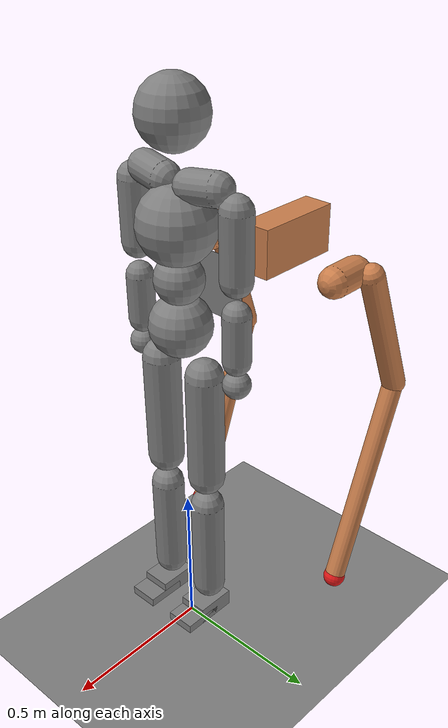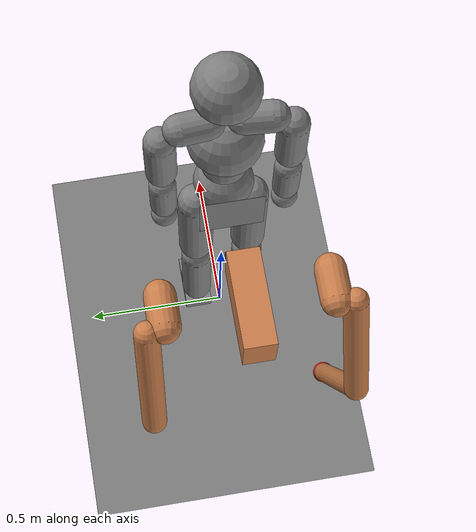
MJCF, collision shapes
<mujoco model="srl_real_hri_HXYK_175">

  <statistic extent="2" center="0.000000 0.000000 1.066667" />

  <option timestep="0.00555" />
  <compiler angle="degree" meshdir="../srl_real_hri/meshes_v1/" />
  <default>
    <motor ctrlrange="-1 1" ctrllimited="true" />
    <default class="body">
      <geom type="capsule" condim="1" friction="1.0 0.05 0.05" solimp=".9 .99 .003" solref=".015 1" />
      <joint type="hinge" damping="0.1" stiffness="5" armature=".007" limited="true" solimplimit="0 .99 .01" />
      <site size="0.042667" group="3" />
      <default class="force-torque">
        <site type="box" size="0.010667 0.010667 0.021333" rgba="1 0 0 1" />
      </default>
      <default class="touch">
        <site type="capsule" rgba="0 0 1 .3" />
      </default>
      <default class="visual">
        <geom type="mesh" contype="0" conaffinity="0" group="2" material="blue_mat"/>
      </default>
      <default class="collision">
        <geom contype="1" conaffinity="1" group="3" material="collision_mat"/>
      </default>
      <default class="smpl">
        <geom type="mesh" contype="0" conaffinity="0" group="4" material="blue_mat"/>
      </default>
    </default>
  </default>

  <asset>
    <mesh name="base_link" file="base_link.STL"/>
    <mesh name="left_hip_x_link" file="left_hip_x_link.STL"/>
    <mesh name="left_hip_y_link" file="left_hip_y_link.STL"/>
    <mesh name="left_knee_link" file="left_knee_link.STL"/>
    <mesh name="right_hip_x_link" file="right_hip_x_link.STL"/>
    <mesh name="right_hip_y_link" file="right_hip_y_link.STL"/>
    <mesh name="right_knee_link" file="right_knee_link.STL"/>

    <material name="blue_mat" rgba="0.86 0.91 1 1"/>
    <material name="white_mat" rgba="1 1 1 1"/>
    <material name="collision_mat" rgba="0.8 0.5 0.3 0.5"/>

    <mesh file="humanoid_meshes/geom/Pelvis.stl" name="Pelvis_mesh"/>
    <mesh file="humanoid_meshes/geom/L_Hip.stl" name="L_Hip_mesh"/>
    <mesh file="humanoid_meshes/geom/R_Hip.stl" name="R_Hip_mesh"/>
    <mesh file="humanoid_meshes/geom/Torso.stl" name="Torso_mesh"/>
    <mesh file="humanoid_meshes/geom/L_Knee.stl" name="L_Knee_mesh"/>
    <mesh file="humanoid_meshes/geom/R_Knee.stl" name="R_Knee_mesh"/>
    <mesh file="humanoid_meshes/geom/Spine.stl" name="Spine_mesh"/>
    <mesh file="humanoid_meshes/geom/L_Ankle.stl" name="L_Ankle_mesh"/>
    <mesh file="humanoid_meshes/geom/R_Ankle.stl" name="R_Ankle_mesh"/>
    <mesh file="humanoid_meshes/geom/Chest.stl" name="Chest_mesh"/>
    <mesh file="humanoid_meshes/geom/L_Toe.stl" name="L_Toe_mesh"/>
    <mesh file="humanoid_meshes/geom/R_Toe.stl" name="R_Toe_mesh"/>
    <mesh file="humanoid_meshes/geom/Neck.stl" name="Neck_mesh"/>
    <mesh file="humanoid_meshes/geom/L_Thorax.stl" name="L_Thorax_mesh"/>
    <mesh file="humanoid_meshes/geom/R_Thorax.stl" name="R_Thorax_mesh"/>
    <mesh file="humanoid_meshes/geom/Head.stl" name="Head_mesh"/>
    <mesh file="humanoid_meshes/geom/L_Shoulder.stl" name="L_Shoulder_mesh"/>
    <mesh file="humanoid_meshes/geom/R_Shoulder.stl" name="R_Shoulder_mesh"/>
    <mesh file="humanoid_meshes/geom/L_Elbow.stl" name="L_Elbow_mesh"/>
    <mesh file="humanoid_meshes/geom/R_Elbow.stl" name="R_Elbow_mesh"/>
    <mesh file="humanoid_meshes/geom/L_Wrist.stl" name="L_Wrist_mesh"/>
    <mesh file="humanoid_meshes/geom/R_Wrist.stl" name="R_Wrist_mesh"/>
    <mesh file="humanoid_meshes/geom/L_Hand.stl" name="L_Hand_mesh"/>
    <mesh file="humanoid_meshes/geom/R_Hand.stl" name="R_Hand_mesh"/>
    <mesh file="humanoid_meshes/geom/L_Foot.stl" name="L_Foot_mesh"/>
    <mesh file="humanoid_meshes/geom/R_Foot.stl" name="R_Foot_mesh"/>
  </asset>

  <worldbody>
    <geom name="floor" type="plane" conaffinity="1" size="106.666667 106.666667 0.213333" />
    <body name="pelvis" pos="0.000000 0.000000 1.066667" childclass="body">
      <freejoint name="root" />

      <site name="root" class="force-torque" />
      <geom name="pelvis" type="sphere" pos="0.000000 0.000000 0.074667" size="0.096000" density="2226" />
      <geom type="mesh" mesh="Pelvis_mesh" class="smpl"/>
      <geom name="upper_waist" type="sphere" pos="0.000000 0.000000 0.218667" size="0.074667" density="2226" />
      <geom type="mesh" mesh="Torso_mesh" class="smpl" pos="-0.0261 -0.0027 0.1112"/>
      <geom type="mesh" mesh="Spine_mesh" class="smpl" pos="-0.026 0.0027 0.2488"/>
      <site name="pelvis" class="touch" type="sphere" pos="0.000000 0.000000 0.074667" size="0.097067" />
      <site name="upper_waist" class="touch" type="sphere" pos="0.000000 0.000000 0.218667" size="0.075733" />

      <body name="torso" pos="0.000000 0.000000 0.251894">
        <light name="top" pos="0.000000 0.000000 2.133333" mode="trackcom" />
        <camera name="back" pos="-3.200000 0.000000 1.066667" xyaxes="0 -1 0 1 0 2" mode="trackcom" />
        <camera name="side" pos="0.000000 -3.200000 1.066667" xyaxes="1 0 0 0 1 2" mode="trackcom" />
        <joint name="abdomen_x" pos="0.000000 0.000000 0.000000" axis="1 0 0" range="-60 60" stiffness="600" damping="60" armature=".025" />
        <joint name="abdomen_y" pos="0.000000 0.000000 0.000000" axis="0 1 0" range="-60 90" stiffness="600" damping="60" armature=".025" />
        <joint name="abdomen_z" pos="0.000000 0.000000 0.000000" axis="0 0 1" range="-50 50" stiffness="600" damping="60" armature=".025" />
        <geom name="torso" type="sphere" pos="0.000000 0.000000 0.128000" size="0.117333" density="1794" />
        <geom type="mesh" mesh="Chest_mesh" class="smpl" pos="-0.0005 0.0042 0.050806"/>
        <geom type="mesh" mesh="Neck_mesh" class="smpl" pos="-0.0435 0.0006 0.276106"/>
        <site name="torso" class="touch" type="sphere" pos="0.000000 0.000000 0.128000" size="0.118400" />

        <geom name="right_clavicle" fromto="-0.006413 -0.048829 0.244049 -0.017957 -0.136722 0.253459" size="0.048000" density="1100" />
        <geom name="left_clavicle" fromto="-0.006413 0.048829 0.244049 -0.017957 0.136722 0.253459" size="0.048000" density="1100" />
        <geom type="mesh" mesh="R_Thorax_mesh" class="smpl" pos="-0.0419 -0.0773 0.174006"/>
        <geom type="mesh" mesh="L_Thorax_mesh" class="smpl" pos="-0.0374 0.083 0.176806"/>

        <body name="head" pos="0.000000 0.000000 0.238820">
          <joint name="neck_x" axis="1 0 0" range="-50 50" stiffness="50" damping="5" armature=".017" />
          <joint name="neck_y" axis="0 1 0" range="-40 60" stiffness="50" damping="5" armature=".017" />
          <joint name="neck_z" axis="0 0 1" range="-45 45" stiffness="50" damping="5" armature=".017" />
          <geom type="mesh" mesh="Head_mesh" class="smpl" pos="0.0121 0.0059 0.107886"/>
          <geom name="head" type="sphere" pos="0.000000 0.000000 0.186667" size="0.101333" density="1081" />
          <site name="head" class="touch" pos="0.000000 0.000000 0.186667" type="sphere" size="0.109867" />
          <camera name="egocentric" pos="0.109867 0.000000 0.186667" xyaxes="0 -1 0 .1 0 1" fovy="80" />
        </body>

        <body name="right_upper_arm" pos="-0.025653 -0.195317 0.259733">
          <joint name="right_shoulder_x" axis="1 0 0" range="-180 45" stiffness="200" damping="20" armature=".02" />
          <joint name="right_shoulder_y" axis="0 1 0" range="-180 60" stiffness="200" damping="20" armature=".02" />
          <joint name="right_shoulder_z" axis="0 0 1" range="-90 90" stiffness="200" damping="20" armature=".02" />
          <geom name="right_upper_arm" fromto="0.000000 0.000000 -0.053333 0.000000 0.000000 -0.245333" size="0.048000" density="982" />
          <geom type="mesh" mesh="R_Shoulder_mesh" class="smpl" quat="0.7071 0.7071 0 0" pos="-0.02 0.03 -0.05"/>
          <site name="right_upper_arm" class="touch" pos="0.000000 0.000000 -0.149333" size="0.049067 0.106667" zaxis="0 0 1" />

          <body name="right_lower_arm" pos="0.000000 0.000000 -0.293107">
            <joint name="right_elbow" axis="0 1 0" range="-160 0" stiffness="150" damping="15" armature=".015" />
            <geom name="right_lower_arm" fromto="0.000000 0.000000 -0.056000 0.000000 0.000000 -0.200000" size="0.042667" density="1056" />
            <geom type="mesh" mesh="R_Elbow_mesh" class="smpl" quat="0.7071 0.7071 0 0" pos="-0.04 0.048 -0.015"/>
            <site name="right_lower_arm" class="touch" pos="0.000000 0.000000 -0.128000" size="0.043733 0.073067" zaxis="0 1 0" />

            <body name="right_hand" pos="0.000000 0.000000 -0.276210">
              <geom name="right_hand" type="sphere" size="0.042667" density="1865" />
              <geom type="mesh" mesh="R_Wrist_mesh" class="smpl" quat="0.7071 0.7071 0 0" pos="-0.045 0.035 0"/>
              <geom type="mesh" mesh="R_Hand_mesh" class="smpl" quat="0.7071 0.7071 0 0" pos="-0.046 0.05 -0.1"/>
              <site name="right_hand" class="touch" type="sphere" size="0.043733" />
            </body>
          </body>
        </body>

        <body name="left_upper_arm" pos="-0.025653 0.195317 0.259733">
          <joint name="left_shoulder_x" axis="1 0 0" range="-45 180" stiffness="200" damping="20" armature=".02" />
          <joint name="left_shoulder_y" axis="0 1 0" range="-180 60" stiffness="200" damping="20" armature=".02" />
          <joint name="left_shoulder_z" axis="0 0 1" range="-90 90" stiffness="200" damping="20" armature=".02" />
          <geom name="left_upper_arm" fromto="0.000000 0.000000 -0.053333 0.000000 0.000000 -0.245333" size="0.048000" density="982" />
          <geom type="mesh" mesh="L_Shoulder_mesh" class="smpl" quat="0.7071 -0.7071 0 0" pos="-0.02 -0.03 -0.05"/>
          <site name="left_upper_arm" class="touch" pos="0.000000 0.000000 -0.149333" size="0.049067 0.106667" zaxis="0 0 1" />

          <body name="left_lower_arm" pos="0.000000 0.000000 -0.293107">
            <joint name="left_elbow" axis="0 1 0" range="-160 0" stiffness="150" damping="15" armature=".015" />
            <geom name="left_lower_arm" fromto="0.000000 0.000000 -0.056000 0.000000 0.000000 -0.200000" size="0.042667" density="1056" />
            <geom type="mesh" mesh="L_Elbow_mesh" class="smpl" quat="0.7071 -0.7071 0 0" pos="-0.045 -0.048 -0.023"/>
            <site name="left_lower_arm" class="touch" pos="0.000000 0.000000 -0.106667" size="0.043733 0.073067" zaxis="0 0 1" />

            <body name="left_hand" pos="0.000000 0.000000 -0.276210">
              <geom name="left_hand" type="sphere" size="0.042667" density="1865" />
              <geom type="mesh" mesh="L_Wrist_mesh" class="smpl" quat="0.7071 -0.7071 0 0" pos="-0.045 -0.035 0"/>
              <geom type="mesh" mesh="L_Hand_mesh" class="smpl" quat="0.7071 -0.7071 0 0" pos="-0.046 -0.05 -0.1"/>
              <site name="left_hand" class="touch" type="sphere" size="0.043733" />
            </body>
          </body>
        </body>
      </body>

      <body name="right_thigh" pos="0.000000 -0.090546 0.000000">
        <site name="right_hip" class="force-torque" />
        <joint name="right_hip_x" axis="1 0 0" range="-60 15" stiffness="300" damping="30" armature=".02" />
        <joint name="right_hip_y" axis="0 1 0" range="-140 60" stiffness="300" damping="30" armature=".02" />
        <joint name="right_hip_z" axis="0 0 1" range="-60 35" stiffness="300" damping="30" armature=".02" />
        <geom name="right_thigh" fromto="0.000000 0.000000 -0.064000 0.000000 0.000000 -0.424000" size="0.058667" density="1269" />
        <geom type="mesh" mesh="R_Hip_mesh" class="smpl" pos="-0.0046 0.022346 -0.0931" />
        <site name="right_thigh" class="touch" pos="0.000000 0.000000 -0.224000" size="0.059733 0.321067" zaxis="0 0 -1" />

        <body name="right_shin" pos="0.000000 0.000000 -0.489649">
          <site name="right_knee" class="force-torque" pos="0.000000 0.000000 0.000000" />
          <joint name="right_knee" pos="0.000000 0.000000 0.000000" axis="0 1 0" range="0 160" stiffness="300" damping="30" armature=".02" />
          <geom name="right_shin" fromto="0.000000 0.000000 -0.048000 0.000000 0.000000 -0.378667" size="0.053333" density="1014" />
          <geom type="mesh" mesh="R_Knee_mesh" class="smpl" pos="0 -0.015 -0.01"/>
          <site name="right_shin" class="touch" pos="0.000000 0.000000 -0.213333" size="0.054400 0.166400" zaxis="0 0 -1" />

          <body name="right_foot" pos="0.000000 0.000000 -0.437195">
            <site name="right_ankle" class="force-torque" />
            <joint name="right_ankle_x" pos="0.000000 0.000000 0.000000" axis="1 0 0" range="-30 30" stiffness="200" damping="20" armature=".01" />
            <joint name="right_ankle_y" pos="0.000000 0.000000 0.000000" axis="0 1 0" range="-55 55" stiffness="200" damping="20" armature=".01" />
            <joint name="right_ankle_z" pos="0.000000 0.000000 0.000000" axis="0 0 1" range="-40 40" stiffness="200" damping="20" armature=".01" />
            <geom name="right_foot" type="box" pos="0.018000 0.000000 -0.024000" size="0.064400 0.048000 0.029333" density="1141"/>
            <geom name="right_toe" type="box" pos="0.078000 0.000000 -0.0384" size="0.064400 0.048000 0.015" density="1141" />
            <geom type="mesh" mesh="R_Foot_mesh" class="smpl" pos="0 0 0"/>
            <site name="right_foot" class="touch" type="box" pos="0.048000 0.000000 -0.024000" size="0.095467 0.058667 0.030400" />
          </body>
        </body>
      </body>

      <body name="left_thigh" pos="0.000000 0.090546 0.000000">
        <site name="left_hip" class="force-torque" />
        <joint name="left_hip_x" axis="1 0 0" range="-15 60" stiffness="300" damping="30" armature=".02" />
        <joint name="left_hip_y" axis="0 1 0" range="-140 60" stiffness="300" damping="30" armature=".02" />
        <joint name="left_hip_z" axis="0 0 1" range="-35 60" stiffness="300" damping="30" armature=".02" />
        <geom name="left_thigh" fromto="0.000000 0.000000 -0.064000 0.000000 0.000000 -0.424000" size="0.058667" density="1269" />
        <geom type="mesh" mesh="L_Hip_mesh" class="smpl" pos="-0.0076 -0.020246 -0.0939"/>
        <site name="left_thigh" class="touch" pos="0.000000 0.000000 -0.224000" size="0.059733 0.321067" zaxis="0 0 -1" />

        <body name="left_shin" pos="0.000000 0.000000 -0.489649">
          <site name="left_knee" class="force-torque" pos="0.000000 0.000000 0.021333" />
          <joint name="left_knee" pos="0.000000 0.000000 0.000000" axis="0 1 0" range="0 160" stiffness="300" damping="30" armature=".02" />
          <geom name="left_shin" fromto="0.000000 0.000000 -0.048000 0.000000 0.000000 -0.378667" size="0.053333" density="1014" />
          <geom type="mesh" mesh="L_Knee_mesh" class="smpl" pos="0 0.015 -0.005"/>
          <site name="left_shin" class="touch" pos="0.000000 0.000000 -0.213333" size="0.054400 0.166400" zaxis="0 0 -1" />

          <body name="left_foot" pos="0.000000 0.000000 -0.437195">
            <site name="left_ankle" class="force-torque" />
            <joint name="left_ankle_x" pos="0.000000 0.000000 0.000000" axis="1 0 0" range="-30 30" stiffness="200" damping="20" armature=".01" />
            <joint name="left_ankle_y" pos="0.000000 0.000000 0.000000" axis="0 1 0" range="-55 55" stiffness="200" damping="20" armature=".01" />
            <joint name="left_ankle_z" pos="0.000000 0.000000 0.000000" axis="0 0 1" range="-40 40" stiffness="200" damping="20" armature=".01" />
            <geom name="left_foot" type="box" pos="0.018000 0.000000 -0.024000" size="0.064400 0.048000 0.029333" density="1141" />
            <geom name="left_toe" type="box" pos="0.078000 0.000000 -0.0384" size="0.064400 0.048000 0.015" density="1141"/>
            <geom type="mesh" mesh="L_Foot_mesh" class="smpl" pos="0 0 0"/>
            <site name="left_foot" class="touch" type="box" pos="0.048000 0.000000 -0.024000" size="0.095467 0.058667 0.030400" />
          </body>
        </body>
      </body>

<!-- SRL Robot Definition for srl_real_hri_v1 -->

<body name="SRL" pos="-0.15 0 0.15">
    <joint armature="0.00" axis="1 0 0" damping="3500" stiffness="150000" type="slide" name="SRL_virtual_damping_x" pos="0 0 0" range="-0.020 0.020" />
    <joint armature="0.00" axis="0 1 0" damping="3500" stiffness="150000" type="slide" name="SRL_virtual_damping_y" pos="0 0 0" range="-0.020 0.020" />
    <joint armature="0.00" axis="0 0 1" damping="3500" stiffness="150000" type="slide" name="SRL_virtual_damping_z" pos="0 0 0" range="-0.020 0.020" />

    <geom name="board" pos="0 0 0" size="0.0005 0.1 0.1" type="box" density="100"/>

    <!-- ############ SRL Structure ############ -->
    <body name="SRL_root" pos="-0.31537291178708343 0 -0.05" euler="0 0 0">

        <joint armature="0.00" axis="0 0 1" damping="0" name="SRL_freejoint_z" pos="0.31537291178708343 0 0" range="-20 20" stiffness="0"/>

        <joint armature="0.00" axis="0 1 0" damping="0" name="SRL_freejoint_y" pos="0.31537291178708343 0 0" range="-20 20" stiffness="0"/>

        <!-- SRL_freejoint_x disabled -->

        <inertial pos="-0.063056 0 0.059865" mass="10.276" fullinertia="0.12836 0.15292 0.23481 0 -0.003528 0"/>

        <geom mesh="base_link" class="visual"/>
        <geom type="box" size="0.15 0.05 0.08" pos="0 0 0.1" class="collision"/>

        <!-- ================= LEFT LEG CHAIN ================= -->
        <body name="left_hip_x_link" pos="0.039 0.2578105843367318 0.06" euler="0 0 0">
            <inertial pos="0.020751 0.0093109 0" mass="1.999" fullinertia="0.002205 0.003362 0.003412 0.000501 0 0"/>
            <joint name="left_hip_x_joint" axis="1 0 0" range="-45.0 45.0" damping="20" stiffness="120" armature="0.1"/>

            <geom mesh="left_hip_x_link" material="white_mat" class="visual"/>
            <geom type="capsule" size="0.05" fromto="-0.05 0 0 0.05 0 0" class="collision"/>

            <body name="left_hip_y_link" pos="-0.06 0.056 0" euler="0 20 0">
                <inertial pos="0.0044865 0.029882 -0.11897" mass="5.4706" fullinertia="0.13911 0.11979 0.024508 -0.000374 -0.000469 -0.004176"/>
                <joint name="left_hip_y_joint" axis="0 -1 0" range="-60.16 60.16" damping="25" stiffness="210" armature="0.1"/>

                <geom mesh="left_hip_y_link" material="white_mat" class="visual"/>
                <geom type="capsule" size="0.04" fromto="0 0 0 0 0.0155 -0.45986203895430183" class="collision"/>

                <body name="left_knee_link" pos="0 0.0155 -0.45986203895430183" euler="0 -40 0">
                    <inertial pos="0 0 -0.28802" mass="0.66217" fullinertia="0.031693 0.03171 0.00023 0 0 0"/>
                    <joint name="left_knee_joint" axis="0 -1 0" range="-60.16 60.16" damping="40" stiffness="280" armature="0.1"/>

                    <geom mesh="left_knee_link" class="visual"/>
                    <geom type="capsule" size="0.035" fromto="0 0 0 0 0 -0.7351229887544153" class="collision"/>

                    <body name="SRL_left_end" pos="0 0 -0.7401229887544153">
                        <inertial pos="0 0 0" mass="0.06" diaginertia="0.0001 0.0001 0.0001"/>
                        <geom name="SRL_left_end" type="sphere" size="0.038"
                              friction="0.9 0.01 0.005"
                              contype="1" conaffinity="1"
                              rgba="0.9 0.1 0.1 1"/>
                        <site name="SRL_left_end_touch" size="0.05" rgba="0 1 0 0.2"/>
                    </body>
                </body>
            </body>
        </body>

        <!-- ================= RIGHT LEG CHAIN ================= -->
        <body name="right_hip_x_link" pos="0.039 -0.2578105843367318 0.06" euler="0 0 0">
            <inertial pos="0.020751 -0.0093109 0" mass="1.999" fullinertia="0.002205 0.003362 0.003412 -0.000501 0 0"/>
            <joint name="right_hip_x_joint" axis="-1 0 0" range="-45.0 45.0" damping="20" stiffness="120" armature="0.1"/>

            <geom mesh="right_hip_x_link" material="white_mat" class="visual"/>
            <geom type="capsule" size="0.05" fromto="-0.05 0 0 0.05 0 0" class="collision"/>

            <body name="right_hip_y_link" pos="-0.06 -0.056 0" euler="0 20 0">
                <inertial pos="0.0044865 -0.029882 -0.11897" mass="5.4706" fullinertia="0.13911 0.11979 0.024508 0.000374 -0.000469 0.004176"/>
                <joint name="right_hip_y_joint" axis="0 -1 0" range="-60.16 60.16" damping="25" stiffness="210" armature="0.1"/>

                <geom mesh="right_hip_y_link" material="white_mat" class="visual"/>
                <geom type="capsule" size="0.04" fromto="0 0 0 0 -0.0155 -0.45986203895430183" class="collision"/>

                <body name="right_knee_link" pos="0 -0.0155 -0.45986203895430183" euler="0 -40 0">
                    <inertial pos="0 0 -0.28802" mass="0.66217" fullinertia="0.031693 0.03171 0.00023 0 0 0"/>
                    <joint name="right_knee_joint" axis="0 -1 0" range="-60.16 60.16" damping="40" stiffness="280" armature="0.1"/>

                    <geom mesh="right_knee_link" class="visual"/>
                    <geom type="capsule" size="0.035" fromto="0 0 0 0 0 -0.7351229887544153" class="collision"/>

                    <body name="SRL_right_end" pos="0 0 -0.7401229887544153">
                        <inertial pos="0 0 0" mass="0.06" diaginertia="0.0001 0.0001 0.0001"/>
                        <geom name="SRL_right_end" type="sphere" size="0.038"
                              friction="0.9 0.01 0.005"
                              contype="1" conaffinity="1"
                              rgba="0.9 0.1 0.1 1"/>
                        <site name="SRL_right_end_touch" size="0.05" rgba="0 1 0 0.2"/>
                    </body>
                </body>
            </body>
        </body>
    </body>
</body>

    </body>
  </worldbody>

  <actuator>
    <motor name="abdomen_x" gear="125" joint="abdomen_x" />
    <motor name="abdomen_y" gear="125" joint="abdomen_y" />
    <motor name="abdomen_z" gear="125" joint="abdomen_z" />
    <motor name="neck_x" gear="20" joint="neck_x" />
    <motor name="neck_y" gear="20" joint="neck_y" />
    <motor name="neck_z" gear="20" joint="neck_z" />
    <motor name="right_shoulder_x" gear="70" joint="right_shoulder_x" />
    <motor name="right_shoulder_y" gear="70" joint="right_shoulder_y" />
    <motor name="right_shoulder_z" gear="70" joint="right_shoulder_z" />
    <motor name="right_elbow" gear="60" joint="right_elbow" />
    <motor name="left_shoulder_x" gear="70" joint="left_shoulder_x" />
    <motor name="left_shoulder_y" gear="70" joint="left_shoulder_y" />
    <motor name="left_shoulder_z" gear="70" joint="left_shoulder_z" />
    <motor name="left_elbow" gear="60" joint="left_elbow" />
    <motor name="right_hip_x" gear="125" joint="right_hip_x" />
    <motor name="right_hip_z" gear="125" joint="right_hip_z" />
    <motor name="right_hip_y" gear="125" joint="right_hip_y" />
    <motor name="right_knee" gear="100" joint="right_knee" />
    <motor name="right_ankle_x" gear="50" joint="right_ankle_x" />
    <motor name="right_ankle_y" gear="50" joint="right_ankle_y" />
    <motor name="right_ankle_z" gear="50" joint="right_ankle_z" />
    <motor name="left_hip_x" gear="125" joint="left_hip_x" />
    <motor name="left_hip_z" gear="125" joint="left_hip_z" />
    <motor name="left_hip_y" gear="125" joint="left_hip_y" />
    <motor name="left_knee" gear="100" joint="left_knee" />
    <motor name="left_ankle_x" gear="50" joint="left_ankle_x" />
    <motor name="left_ankle_y" gear="50" joint="left_ankle_y" />
    <motor name="left_ankle_z" gear="50" joint="left_ankle_z" />
    <motor name="left_hip_x_torque" joint="left_hip_x_joint" gear="450"  />
    <motor name="left_hip_y_torque" joint="left_hip_y_joint" gear="450"  />
    <motor name="left_knee_torque" joint="left_knee_joint" gear="450"  />

    <motor name="right_hip_x_torque" joint="right_hip_x_joint" gear="450"  />
    <motor name="right_hip_y_torque" joint="right_hip_y_joint" gear="450"  />
    <motor name="right_knee_torque" joint="right_knee_joint" gear="450"  />
  </actuator>

  <sensor>
    <subtreelinvel name="pelvis_subtreelinvel" body="pelvis" />
    <accelerometer name="root_accel" site="root" />
    <velocimeter name="root_vel" site="root" />
    <gyro name="root_gyro" site="root" />

    <force name="left_ankle_force" site="left_ankle" />
    <force name="right_ankle_force" site="right_ankle" />
    <force name="left_knee_force" site="left_knee" />
    <force name="right_knee_force" site="right_knee" />
    <force name="left_hip_force" site="left_hip" />
    <force name="right_hip_force" site="right_hip" />

    <torque name="left_ankle_torque" site="left_ankle" />
    <torque name="right_ankle_torque" site="right_ankle" />
    <torque name="left_knee_torque" site="left_knee" />
    <torque name="right_knee_torque" site="right_knee" />
    <torque name="left_hip_torque" site="left_hip" />
    <torque name="right_hip_torque" site="right_hip" />

    <touch name="pelvis_touch" site="pelvis" />
    <touch name="upper_waist_touch" site="upper_waist" />
    <touch name="torso_touch" site="torso" />
    <touch name="head_touch" site="head" />
    <touch name="right_upper_arm_touch" site="right_upper_arm" />
    <touch name="right_lower_arm_touch" site="right_lower_arm" />
    <touch name="right_hand_touch" site="right_hand" />
    <touch name="left_upper_arm_touch" site="left_upper_arm" />
    <touch name="left_lower_arm_touch" site="left_lower_arm" />
    <touch name="left_hand_touch" site="left_hand" />
    <touch name="right_thigh_touch" site="right_thigh" />
    <touch name="right_shin_touch" site="right_shin" />
    <touch name="right_foot_touch" site="right_foot" />
    <touch name="left_thigh_touch" site="left_thigh" />
    <touch name="left_shin_touch" site="left_shin" />
    <touch name="left_foot_touch" site="left_foot" />
  </sensor>

</mujoco>
